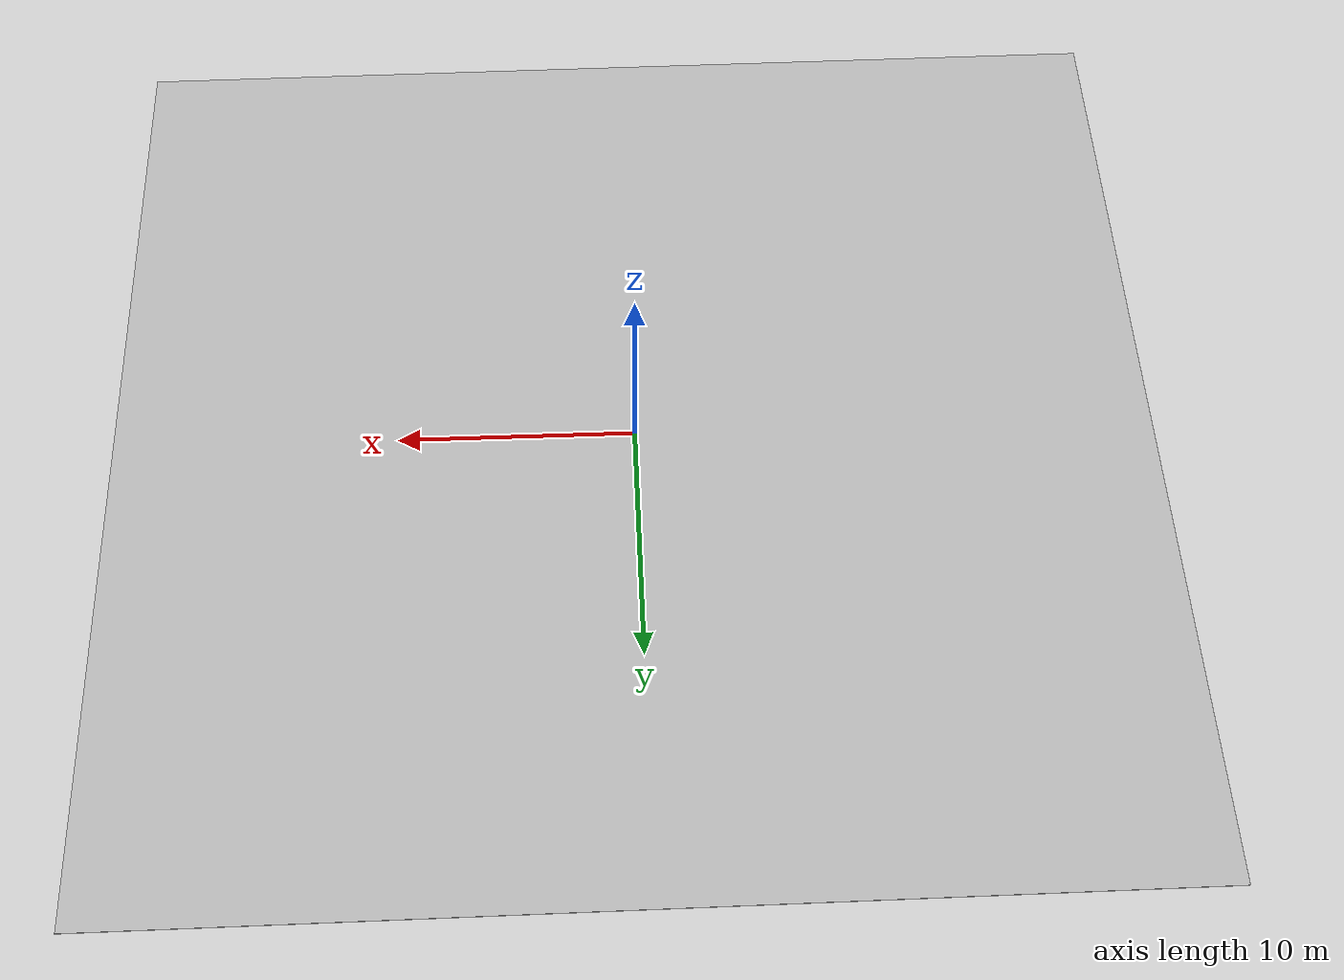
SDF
<?xml version="1.0" ?>
<sdf version="1.5">
  <model name="museum_floor">
    <static>true</static>
    <link name="link">
      <pose>0 0 0.025 0 0 0</pose>
      <collision name="collision">
        <geometry>
          <box>
            <size>44 40.0 0.05</size>
          </box>
        </geometry>
      </collision>
      <visual name="visual">
        <cast_shadows>false</cast_shadows>
        <geometry>
          <box>
            <size>44 40.0 0.05</size>
          </box>
        </geometry>
        <material>
          <script>
            <uri>model://museum_floor/materials/scripts</uri>
            <uri>model://museum_floor/materials/textures</uri>
            <name>museum_floor</name>
          </script>
        </material>
      </visual>
    </link>
  </model>
</sdf>
